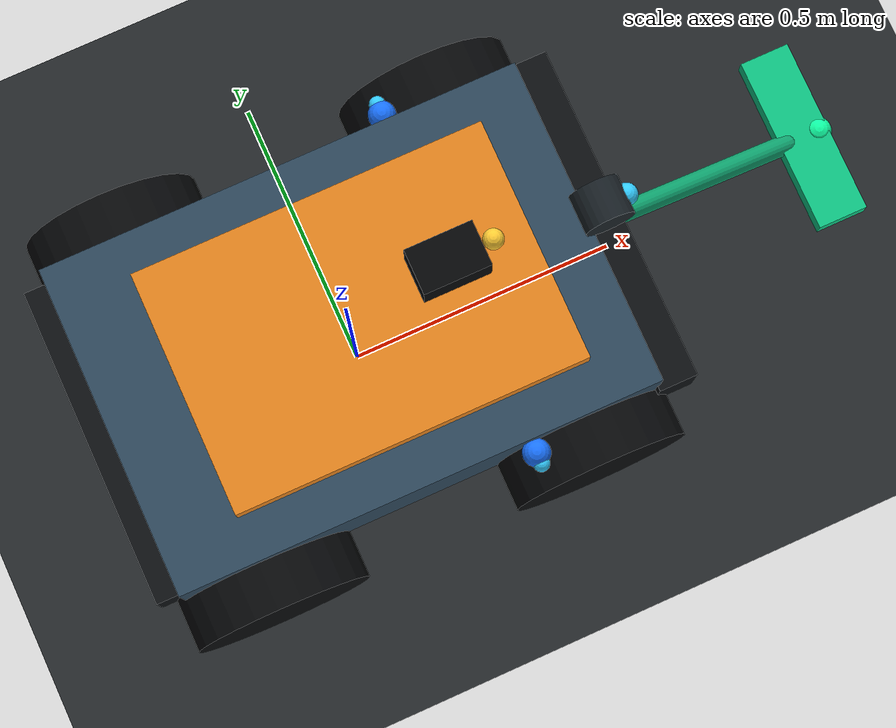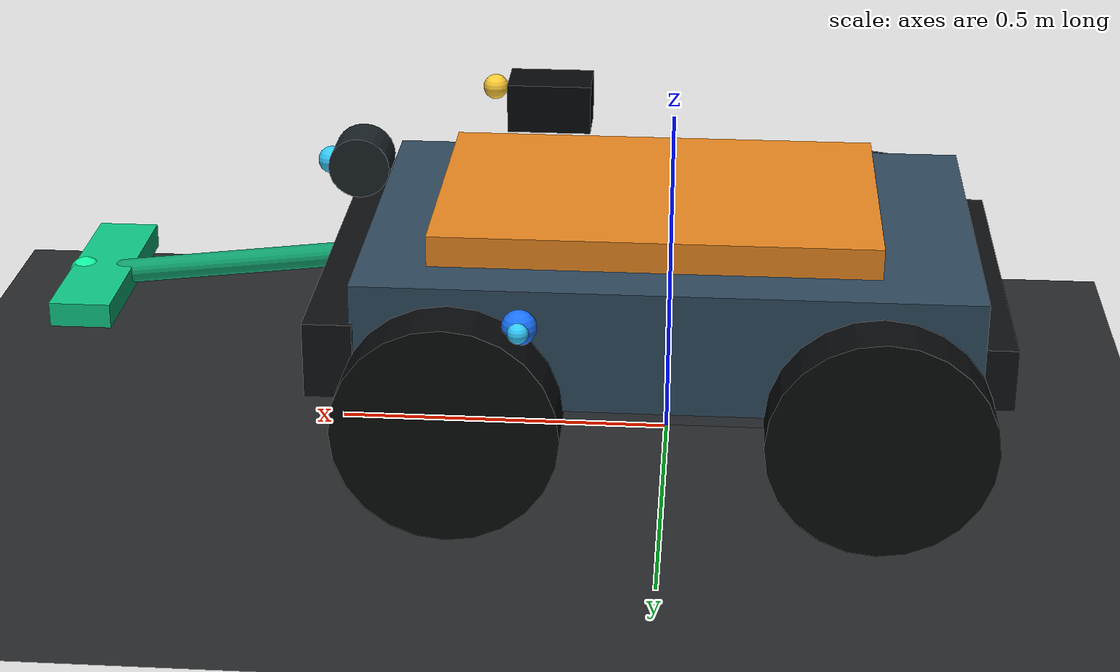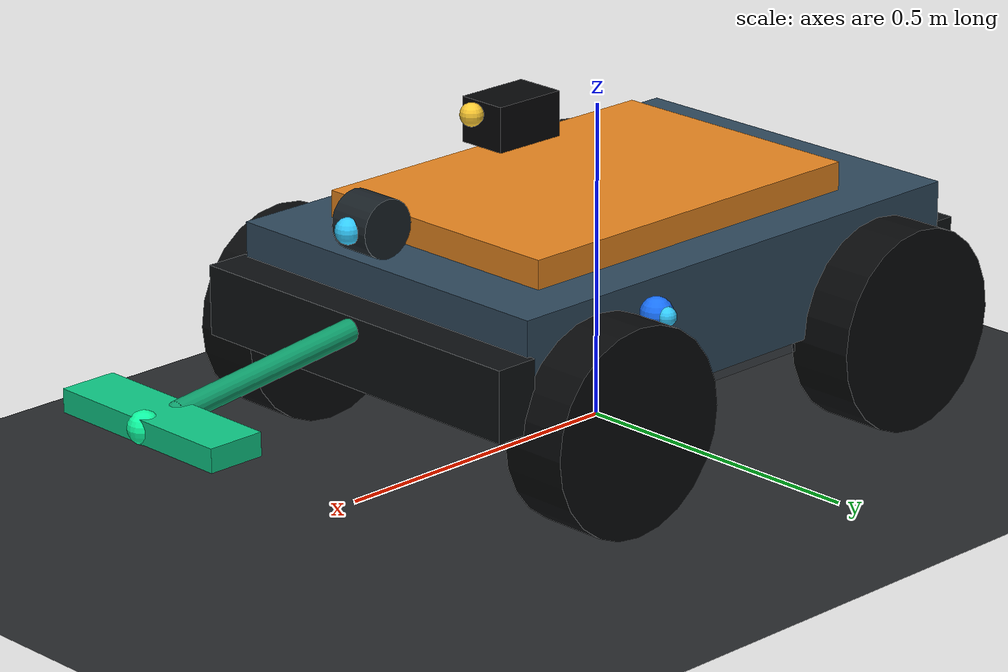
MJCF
<mujoco model="autonomous_disaster_response_rover">
  <compiler angle="radian" coordinate="local"/>
  <option timestep="0.002" gravity="0 0 -9.81" iterations="80" solver="Newton"/>

  <visual>
    <global offwidth="1280" offheight="720"/>
    <quality shadowsize="2048"/>
    <map force="0.1" znear="0.01"/>
  </visual>

  <asset>
    <texture name="grid" type="2d" builtin="checker" rgb1="0.12 0.13 0.14" rgb2="0.18 0.19 0.20"
             width="512" height="512"/>
    <material name="disaster_floor" texture="grid" texrepeat="5 5" reflectance="0.12"/>
  </asset>

  <default>
    <geom solref="0.012 1" solimp="0.9 0.95 0.001"/>
    <default class="rover_wheel">
      <joint type="hinge" axis="0 1 0" damping="2.0" frictionloss="0.35"/>
      <geom type="cylinder" size="0.16 0.055" mass="2.0" rgba="0.03 0.035 0.04 1"
            friction="1.6 0.04 0.01" condim="3"/>
    </default>
  </default>

  <worldbody>
    <light name="key_light" pos="0 -3 4" dir="0 0.6 -1" diffuse="0.9 0.9 0.85"/>
    <light name="fill_light" pos="-3 2 2" dir="0.8 -0.4 -1" diffuse="0.35 0.40 0.45"/>
    <camera name="overview_camera" pos="2.8 -3.0 1.8" xyaxes="0.72 0.69 0 -0.32 0.34 0.88"/>

    <geom name="floor" type="plane" size="8 8 0.05" material="disaster_floor"
          friction="1.4 0.08 0.02" condim="4"/>

    <body name="rover" pos="0 0 0.24">
      <freejoint name="rover_freejoint"/>
      <site name="rover_center_site" pos="0 0 0" size="0.015" rgba="1 1 1 0"/>

      <geom name="rover_chassis_collision" type="box" size="0.42 0.28 0.10" mass="28"
            rgba="0.18 0.22 0.26 0.18" contype="1" conaffinity="1"
            friction="1.2 0.05 0.01"/>
      <geom name="rover_chassis_visual" type="box" size="0.44 0.30 0.09" mass="0"
            pos="0 0 0.015" rgba="0.18 0.28 0.36 1" contype="0" conaffinity="0"/>
      <geom name="rover_top_plate_visual" type="box" size="0.32 0.22 0.025" mass="0"
            pos="0.02 0 0.125" rgba="0.90 0.52 0.12 1" contype="0" conaffinity="0"/>
      <geom name="rover_front_bumper" type="box" size="0.035 0.31 0.055" mass="2.0"
            pos="0.47 0 -0.005" rgba="0.05 0.06 0.07 1" friction="1.0 0.05 0.01"/>
      <geom name="rover_rear_bumper" type="box" size="0.025 0.29 0.045" mass="1.5"
            pos="-0.46 0 -0.01" rgba="0.05 0.06 0.07 1" friction="1.0 0.05 0.01"/>

      <body name="forward_lidar_mount" pos="0.46 0 0.18">
        <geom name="forward_lidar_mount_visual" type="cylinder" size="0.045 0.035" mass="0.15"
              euler="1.5708 0 0" rgba="0.10 0.13 0.15 1" contype="0" conaffinity="0"/>
        <site name="forward_lidar_site" pos="0.045 0 0" size="0.02" rgba="0.2 0.8 1 1"/>
      </body>

      <body name="left_proximity_sensor_mount" pos="0.20 0.32 0.06">
        <geom name="left_proximity_sensor_visual" type="sphere" size="0.025" mass="0.05"
              rgba="0.10 0.45 1.00 1" contype="0" conaffinity="0"/>
        <site name="left_proximity_sensor_site" pos="0 0.02 0" size="0.015" rgba="0.2 0.8 1 1"/>
      </body>

      <body name="right_proximity_sensor_mount" pos="0.20 -0.32 0.06">
        <geom name="right_proximity_sensor_visual" type="sphere" size="0.025" mass="0.05"
              rgba="0.10 0.45 1.00 1" contype="0" conaffinity="0"/>
        <site name="right_proximity_sensor_site" pos="0 -0.02 0" size="0.015" rgba="0.2 0.8 1 1"/>
      </body>

      <body name="camera_mount" pos="0.18 0 0.28">
        <geom name="camera_mount_visual" type="box" size="0.06 0.04 0.035" mass="0.1"
              rgba="0.02 0.025 0.03 1" contype="0" conaffinity="0"/>
        <site name="camera_mount_site" pos="0.08 0 0.02" size="0.018" rgba="1 0.8 0.2 1"/>
        <camera name="rover_front_camera" pos="0.08 0 0.02" xyaxes="0 -1 0 0.12 0 0.99"/>
      </body>

      <body name="rescue_deployer" pos="0.49 0 0.03">
        <joint name="rescue_deployer_joint" type="hinge" axis="0 1 0" range="0 0.65"
               damping="1.4" frictionloss="0.08" limited="true"/>
        <geom name="rescue_deployer_arm" type="capsule" fromto="0 0 0 0.34 0 -0.04"
              size="0.018" mass="0.18" rgba="0.05 0.62 0.42 1"
              contype="0" conaffinity="0"/>
        <geom name="rescue_deployer_pad" type="box" pos="0.37 0 -0.045"
              size="0.045 0.16 0.018" mass="0.12" rgba="0.05 0.78 0.52 1"
              contype="0" conaffinity="0"/>
        <site name="rescue_tool_site" pos="0.40 0 -0.045" size="0.025" rgba="0.05 1 0.64 1"/>
      </body>

      <body name="left_front_wheel" pos="0.30 0.33 -0.08">
        <joint name="left_front_wheel_joint" class="rover_wheel"/>
        <geom name="left_front_wheel_geom" class="rover_wheel" euler="1.5708 0 0"/>
      </body>

      <body name="left_rear_wheel" pos="-0.30 0.33 -0.08">
        <joint name="left_rear_wheel_joint" class="rover_wheel"/>
        <geom name="left_rear_wheel_geom" class="rover_wheel" euler="1.5708 0 0"/>
      </body>

      <body name="right_front_wheel" pos="0.30 -0.33 -0.08">
        <joint name="right_front_wheel_joint" class="rover_wheel"/>
        <geom name="right_front_wheel_geom" class="rover_wheel" euler="1.5708 0 0"/>
      </body>

      <body name="right_rear_wheel" pos="-0.30 -0.33 -0.08">
        <joint name="right_rear_wheel_joint" class="rover_wheel"/>
        <geom name="right_rear_wheel_geom" class="rover_wheel" euler="1.5708 0 0"/>
      </body>
    </body>
  </worldbody>

  <actuator>
    <velocity name="left_front_wheel_velocity" joint="left_front_wheel_joint" kv="1.6" ctrlrange="-3 3"/>
    <velocity name="left_rear_wheel_velocity" joint="left_rear_wheel_joint" kv="1.6" ctrlrange="-3 3"/>
    <velocity name="right_front_wheel_velocity" joint="right_front_wheel_joint" kv="1.6" ctrlrange="-3 3"/>
    <velocity name="right_rear_wheel_velocity" joint="right_rear_wheel_joint" kv="1.6" ctrlrange="-3 3"/>
    <position name="rescue_deployer_actuator" joint="rescue_deployer_joint" kp="3.0"
              ctrlrange="0 0.65" forcerange="-2 2"/>
  </actuator>

  <sensor>
    <framepos name="rover_pose_sensor" objtype="body" objname="rover"/>
    <framequat name="rover_orientation_sensor" objtype="body" objname="rover"/>
    <velocimeter name="rover_velocity_sensor" site="rover_center_site"/>
  </sensor>
</mujoco>
